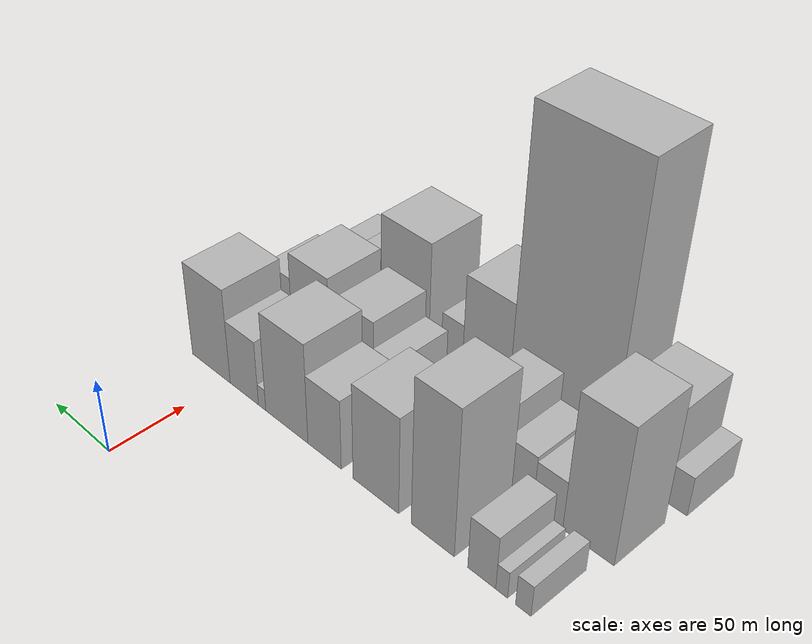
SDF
<sdf version="1.6">
 <world name="default">
  <model name="building_9">
   <static>1</static>
   <pose>100.0000 -221.3001 0 0.000000 0.000000 0.000000</pose>
   <link name="link">
    <pose>0 0 10.50 0 0 0</pose>
    <collision name="collision"><geometry><box><size>40.0000 9.7096 21.0000</size></box></geometry></collision>
    <visual name="visual">
     <cast_shadows>0</cast_shadows>
     <geometry><box><size>40.0000 9.7096 21.0000</size></box></geometry>
     <material>
      <script>
       <uri>model://HANNAS_wall/materials/scripts</uri>
       <uri>model://HANNAS_wall/materials/textures</uri>
       <name>vrc/HANNAS_wall</name>
      </script>
     </material>
    </visual>
   </link>
  </model>
  <model name="building_10">
   <static>1</static>
   <pose>100.0000 -207.6392 0 0.000000 0.000000 0.000000</pose>
   <link name="link">
    <pose>0 0 9.00 0 0 0</pose>
    <collision name="collision"><geometry><box><size>40.0000 7.6121 18.0000</size></box></geometry></collision>
    <visual name="visual">
     <cast_shadows>0</cast_shadows>
     <geometry><box><size>40.0000 7.6121 18.0000</size></box></geometry>
     <material>
      <script>
       <uri>model://HANNAS_wall/materials/scripts</uri>
       <uri>model://HANNAS_wall/materials/textures</uri>
       <name>vrc/HANNAS_wall</name>
      </script>
     </material>
    </visual>
   </link>
  </model>
  <model name="building_11">
   <static>1</static>
   <pose>100.0000 -194.6576 0 0.000000 0.000000 0.000000</pose>
   <link name="link">
    <pose>0 0 18.00 0 0 0</pose>
    <collision name="collision"><geometry><box><size>40.0000 18.3511 36.0000</size></box></geometry></collision>
    <visual name="visual">
     <cast_shadows>0</cast_shadows>
     <geometry><box><size>40.0000 18.3511 36.0000</size></box></geometry>
     <material>
      <script>
       <uri>model://HANNAS_wall/materials/scripts</uri>
       <uri>model://HANNAS_wall/materials/textures</uri>
       <name>vrc/HANNAS_wall</name>
      </script>
     </material>
    </visual>
   </link>
  </model>
  <model name="building_12">
   <static>1</static>
   <pose>100.0000 -161.5539 0 0.000000 0.000000 0.000000</pose>
   <link name="link">
    <pose>0 0 49.50 0 0 0</pose>
    <collision name="collision"><geometry><box><size>40.0000 29.8562 99.0000</size></box></geometry></collision>
    <visual name="visual">
     <cast_shadows>0</cast_shadows>
     <geometry><box><size>40.0000 29.8562 99.0000</size></box></geometry>
     <material>
      <script>
       <uri>model://HANNAS_wall/materials/scripts</uri>
       <uri>model://HANNAS_wall/materials/textures</uri>
       <name>vrc/HANNAS_wall</name>
      </script>
     </material>
    </visual>
   </link>
  </model>
  <model name="building_13">
   <static>1</static>
   <pose>100.0000 -120.6561 0 0.000000 0.000000 0.000000</pose>
   <link name="link">
    <pose>0 0 33.00 0 0 0</pose>
    <collision name="collision"><geometry><box><size>40.0000 33.9394 66.0000</size></box></geometry></collision>
    <visual name="visual">
     <cast_shadows>0</cast_shadows>
     <geometry><box><size>40.0000 33.9394 66.0000</size></box></geometry>
     <material>
      <script>
       <uri>model://HANNAS_wall/materials/scripts</uri>
       <uri>model://HANNAS_wall/materials/textures</uri>
       <name>vrc/HANNAS_wall</name>
      </script>
     </material>
    </visual>
   </link>
  </model>
  <model name="building_14">
   <static>1</static>
   <pose>100.0000 -81.5072 0 0.000000 0.000000 0.000000</pose>
   <link name="link">
    <pose>0 0 24.00 0 0 0</pose>
    <collision name="collision"><geometry><box><size>40.0000 26.3584 48.0000</size></box></geometry></collision>
    <visual name="visual">
     <cast_shadows>0</cast_shadows>
     <geometry><box><size>40.0000 26.3584 48.0000</size></box></geometry>
     <material>
      <script>
       <uri>model://HANNAS_wall/materials/scripts</uri>
       <uri>model://HANNAS_wall/materials/textures</uri>
       <name>vrc/HANNAS_wall</name>
      </script>
     </material>
    </visual>
   </link>
  </model>
  <model name="building_15">
   <static>1</static>
   <pose>100.0000 -50.8605 0 0.000000 0.000000 0.000000</pose>
   <link name="link">
    <pose>0 0 34.50 0 0 0</pose>
    <collision name="collision"><geometry><box><size>40.0000 34.9350 69.0000</size></box></geometry></collision>
    <visual name="visual">
     <cast_shadows>0</cast_shadows>
     <geometry><box><size>40.0000 34.9350 69.0000</size></box></geometry>
     <material>
      <script>
       <uri>model://HANNAS_wall/materials/scripts</uri>
       <uri>model://HANNAS_wall/materials/textures</uri>
       <name>vrc/HANNAS_wall</name>
      </script>
     </material>
    </visual>
   </link>
  </model>
  <model name="building_16">
   <static>1</static>
   <pose>100.0000 -30.2823 0 0.000000 0.000000 0.000000</pose>
   <link name="link">
    <pose>0 0 7.50 0 0 0</pose>
    <collision name="collision"><geometry><box><size>40.0000 6.2215 15.0000</size></box></geometry></collision>
    <visual name="visual">
     <cast_shadows>0</cast_shadows>
     <geometry><box><size>40.0000 6.2215 15.0000</size></box></geometry>
     <material>
      <script>
       <uri>model://HANNAS_wall/materials/scripts</uri>
       <uri>model://HANNAS_wall/materials/textures</uri>
       <name>vrc/HANNAS_wall</name>
      </script>
     </material>
    </visual>
   </link>
  </model>
  <model name="building_17">
   <static>1</static>
   <pose>100.0000 -14.8061 0 0.000000 0.000000 0.000000</pose>
   <link name="link">
    <pose>0 0 22.50 0 0 0</pose>
    <collision name="collision"><geometry><box><size>40.0000 24.7308 45.0000</size></box></geometry></collision>
    <visual name="visual">
     <cast_shadows>0</cast_shadows>
     <geometry><box><size>40.0000 24.7308 45.0000</size></box></geometry>
     <material>
      <script>
       <uri>model://HANNAS_wall/materials/scripts</uri>
       <uri>model://HANNAS_wall/materials/textures</uri>
       <name>vrc/HANNAS_wall</name>
      </script>
     </material>
    </visual>
   </link>
  </model>
  <model name="building_18">
   <static>1</static>
   <pose>100.0000 14.7597 0 0.000000 0.000000 0.000000</pose>
   <link name="link">
    <pose>0 0 33.00 0 0 0</pose>
    <collision name="collision"><geometry><box><size>40.0000 34.4009 66.0000</size></box></geometry></collision>
    <visual name="visual">
     <cast_shadows>0</cast_shadows>
     <geometry><box><size>40.0000 34.4009 66.0000</size></box></geometry>
     <material>
      <script>
       <uri>model://HANNAS_wall/materials/scripts</uri>
       <uri>model://HANNAS_wall/materials/textures</uri>
       <name>vrc/HANNAS_wall</name>
      </script>
     </material>
    </visual>
   </link>
  </model>
  <model name="building_47">
   <static>1</static>
   <pose>152.0000 -217.5060 0 0.000000 0.000000 0.000000</pose>
   <link name="link">
    <pose>0 0 46.50 0 0 0</pose>
    <collision name="collision"><geometry><box><size>40.0000 32.5342 93.0000</size></box></geometry></collision>
    <visual name="visual">
     <cast_shadows>0</cast_shadows>
     <geometry><box><size>40.0000 32.5342 93.0000</size></box></geometry>
     <material>
      <script>
       <uri>model://HANNAS_wall/materials/scripts</uri>
       <uri>model://HANNAS_wall/materials/textures</uri>
       <name>vrc/HANNAS_wall</name>
      </script>
     </material>
    </visual>
   </link>
  </model>
  <model name="building_48">
   <static>1</static>
   <pose>152.0000 -191.4395 0 0.000000 0.000000 0.000000</pose>
   <link name="link">
    <pose>0 0 16.50 0 0 0</pose>
    <collision name="collision"><geometry><box><size>40.0000 19.5988 33.0000</size></box></geometry></collision>
    <visual name="visual">
     <cast_shadows>0</cast_shadows>
     <geometry><box><size>40.0000 19.5988 33.0000</size></box></geometry>
     <material>
      <script>
       <uri>model://HANNAS_wall/materials/scripts</uri>
       <uri>model://HANNAS_wall/materials/textures</uri>
       <name>vrc/HANNAS_wall</name>
      </script>
     </material>
    </visual>
   </link>
  </model>
  <model name="building_49">
   <static>1</static>
   <pose>152.0000 -171.7727 0 0.000000 0.000000 0.000000</pose>
   <link name="link">
    <pose>0 0 18.00 0 0 0</pose>
    <collision name="collision"><geometry><box><size>40.0000 19.7348 36.0000</size></box></geometry></collision>
    <visual name="visual">
     <cast_shadows>0</cast_shadows>
     <geometry><box><size>40.0000 19.7348 36.0000</size></box></geometry>
     <material>
      <script>
       <uri>model://HANNAS_wall/materials/scripts</uri>
       <uri>model://HANNAS_wall/materials/textures</uri>
       <name>vrc/HANNAS_wall</name>
      </script>
     </material>
    </visual>
   </link>
  </model>
  <model name="building_50">
   <static>1</static>
   <pose>152.0000 -148.2957 0 0.000000 0.000000 0.000000</pose>
   <link name="link">
    <pose>0 0 27.00 0 0 0</pose>
    <collision name="collision"><geometry><box><size>40.0000 27.2191 54.0000</size></box></geometry></collision>
    <visual name="visual">
     <cast_shadows>0</cast_shadows>
     <geometry><box><size>40.0000 27.2191 54.0000</size></box></geometry>
     <material>
      <script>
       <uri>model://HANNAS_wall/materials/scripts</uri>
       <uri>model://HANNAS_wall/materials/textures</uri>
       <name>vrc/HANNAS_wall</name>
      </script>
     </material>
    </visual>
   </link>
  </model>
  <model name="building_51">
   <static>1</static>
   <pose>152.0000 -72.7577 0 0.000000 0.000000 0.000000</pose>
   <link name="link">
    <pose>0 0 16.50 0 0 0</pose>
    <collision name="collision"><geometry><box><size>40.0000 17.2856 33.0000</size></box></geometry></collision>
    <visual name="visual">
     <cast_shadows>0</cast_shadows>
     <geometry><box><size>40.0000 17.2856 33.0000</size></box></geometry>
     <material>
      <script>
       <uri>model://HANNAS_wall/materials/scripts</uri>
       <uri>model://HANNAS_wall/materials/textures</uri>
       <name>vrc/HANNAS_wall</name>
      </script>
     </material>
    </visual>
   </link>
  </model>
  <model name="building_52">
   <static>1</static>
   <pose>152.0000 -48.9809 0 0.000000 0.000000 0.000000</pose>
   <link name="link">
    <pose>0 0 25.50 0 0 0</pose>
    <collision name="collision"><geometry><box><size>40.0000 30.2680 51.0000</size></box></geometry></collision>
    <visual name="visual">
     <cast_shadows>0</cast_shadows>
     <geometry><box><size>40.0000 30.2680 51.0000</size></box></geometry>
     <material>
      <script>
       <uri>model://HANNAS_wall/materials/scripts</uri>
       <uri>model://HANNAS_wall/materials/textures</uri>
       <name>vrc/HANNAS_wall</name>
      </script>
     </material>
    </visual>
   </link>
  </model>
  <model name="building_53">
   <static>1</static>
   <pose>152.0000 -11.5261 0 0.000000 0.000000 0.000000</pose>
   <link name="link">
    <pose>0 0 30.00 0 0 0</pose>
    <collision name="collision"><geometry><box><size>40.0000 32.6414 60.0000</size></box></geometry></collision>
    <visual name="visual">
     <cast_shadows>0</cast_shadows>
     <geometry><box><size>40.0000 32.6414 60.0000</size></box></geometry>
     <material>
      <script>
       <uri>model://HANNAS_wall/materials/scripts</uri>
       <uri>model://HANNAS_wall/materials/textures</uri>
       <name>vrc/HANNAS_wall</name>
      </script>
     </material>
    </visual>
   </link>
  </model>
  <model name="building_54">
   <static>1</static>
   <pose>152.0000 15.3104 0 0.000000 0.000000 0.000000</pose>
   <link name="link">
    <pose>0 0 21.00 0 0 0</pose>
    <collision name="collision"><geometry><box><size>40.0000 21.0316 42.0000</size></box></geometry></collision>
    <visual name="visual">
     <cast_shadows>0</cast_shadows>
     <geometry><box><size>40.0000 21.0316 42.0000</size></box></geometry>
     <material>
      <script>
       <uri>model://HANNAS_wall/materials/scripts</uri>
       <uri>model://HANNAS_wall/materials/textures</uri>
       <name>vrc/HANNAS_wall</name>
      </script>
     </material>
    </visual>
   </link>
  </model>
  <model name="building_81">
   <static>1</static>
   <pose>204.0000 -232.2177 0 0.000000 0.000000 0.000000</pose>
   <link name="link">
    <pose>0 0 13.50 0 0 0</pose>
    <collision name="collision"><geometry><box><size>40.0000 12.9776 27.0000</size></box></geometry></collision>
    <visual name="visual">
     <cast_shadows>0</cast_shadows>
     <geometry><box><size>40.0000 12.9776 27.0000</size></box></geometry>
     <material>
      <script>
       <uri>model://HANNAS_wall/materials/scripts</uri>
       <uri>model://HANNAS_wall/materials/textures</uri>
       <name>vrc/HANNAS_wall</name>
      </script>
     </material>
    </visual>
   </link>
  </model>
  <model name="building_82">
   <static>1</static>
   <pose>204.0000 -208.8524 0 0.000000 0.000000 0.000000</pose>
   <link name="link">
    <pose>0 0 31.50 0 0 0</pose>
    <collision name="collision"><geometry><box><size>40.0000 33.7529 63.0000</size></box></geometry></collision>
    <visual name="visual">
     <cast_shadows>0</cast_shadows>
     <geometry><box><size>40.0000 33.7529 63.0000</size></box></geometry>
     <material>
      <script>
       <uri>model://HANNAS_wall/materials/scripts</uri>
       <uri>model://HANNAS_wall/materials/textures</uri>
       <name>vrc/HANNAS_wall</name>
      </script>
     </material>
    </visual>
   </link>
  </model>
  <model name="building_83">
   <static>1</static>
   <pose>204.0000 -153.5234 0 0.000000 0.000000 0.000000</pose>
   <link name="link">
    <pose>0 0 94.50 0 0 0</pose>
    <collision name="collision"><geometry><box><size>40.0000 70.9052 189.0000</size></box></geometry></collision>
    <visual name="visual">
     <cast_shadows>0</cast_shadows>
     <geometry><box><size>40.0000 70.9052 189.0000</size></box></geometry>
     <material>
      <script>
       <uri>model://HANNAS_wall/materials/scripts</uri>
       <uri>model://HANNAS_wall/materials/textures</uri>
       <name>vrc/HANNAS_wall</name>
      </script>
     </material>
    </visual>
   </link>
  </model>
  <model name="building_84">
   <static>1</static>
   <pose>204.0000 -100.3104 0 0.000000 0.000000 0.000000</pose>
   <link name="link">
    <pose>0 0 33.00 0 0 0</pose>
    <collision name="collision"><geometry><box><size>40.0000 35.5207 66.0000</size></box></geometry></collision>
    <visual name="visual">
     <cast_shadows>0</cast_shadows>
     <geometry><box><size>40.0000 35.5207 66.0000</size></box></geometry>
     <material>
      <script>
       <uri>model://HANNAS_wall/materials/scripts</uri>
       <uri>model://HANNAS_wall/materials/textures</uri>
       <name>vrc/HANNAS_wall</name>
      </script>
     </material>
    </visual>
   </link>
  </model>
  <model name="building_85">
   <static>1</static>
   <pose>204.0000 -74.1930 0 0.000000 0.000000 0.000000</pose>
   <link name="link">
    <pose>0 0 15.00 0 0 0</pose>
    <collision name="collision"><geometry><box><size>40.0000 16.7143 30.0000</size></box></geometry></collision>
    <visual name="visual">
     <cast_shadows>0</cast_shadows>
     <geometry><box><size>40.0000 16.7143 30.0000</size></box></geometry>
     <material>
      <script>
       <uri>model://HANNAS_wall/materials/scripts</uri>
       <uri>model://HANNAS_wall/materials/textures</uri>
       <name>vrc/HANNAS_wall</name>
      </script>
     </material>
    </visual>
   </link>
  </model>
  <model name="building_86">
   <static>1</static>
   <pose>204.0000 -35.8660 0 0.000000 0.000000 0.000000</pose>
   <link name="link">
    <pose>0 0 36.00 0 0 0</pose>
    <collision name="collision"><geometry><box><size>40.0000 39.9396 72.0000</size></box></geometry></collision>
    <visual name="visual">
     <cast_shadows>0</cast_shadows>
     <geometry><box><size>40.0000 39.9396 72.0000</size></box></geometry>
     <material>
      <script>
       <uri>model://HANNAS_wall/materials/scripts</uri>
       <uri>model://HANNAS_wall/materials/textures</uri>
       <name>vrc/HANNAS_wall</name>
      </script>
     </material>
    </visual>
   </link>
  </model>
  <model name="building_87">
   <static>1</static>
   <pose>204.0000 -5.7195 0 0.000000 0.000000 0.000000</pose>
   <link name="link">
    <pose>0 0 19.50 0 0 0</pose>
    <collision name="collision"><geometry><box><size>40.0000 20.3535 39.0000</size></box></geometry></collision>
    <visual name="visual">
     <cast_shadows>0</cast_shadows>
     <geometry><box><size>40.0000 20.3535 39.0000</size></box></geometry>
     <material>
      <script>
       <uri>model://HANNAS_wall/materials/scripts</uri>
       <uri>model://HANNAS_wall/materials/textures</uri>
       <name>vrc/HANNAS_wall</name>
      </script>
     </material>
    </visual>
   </link>
  </model>
  <model name="building_88">
   <static>1</static>
   <pose>204.0000 8.1179 0 0.000000 0.000000 0.000000</pose>
   <link name="link">
    <pose>0 0 9.00 0 0 0</pose>
    <collision name="collision"><geometry><box><size>40.0000 7.3213 18.0000</size></box></geometry></collision>
    <visual name="visual">
     <cast_shadows>0</cast_shadows>
     <geometry><box><size>40.0000 7.3213 18.0000</size></box></geometry>
     <material>
      <script>
       <uri>model://HANNAS_wall/materials/scripts</uri>
       <uri>model://HANNAS_wall/materials/textures</uri>
       <name>vrc/HANNAS_wall</name>
      </script>
     </material>
    </visual>
   </link>
  </model>
  <model name="building_89">
   <static>1</static>
   <pose>204.0000 20.3497 0 0.000000 0.000000 0.000000</pose>
   <link name="link">
    <pose>0 0 15.00 0 0 0</pose>
    <collision name="collision"><geometry><box><size>40.0000 17.1423 30.0000</size></box></geometry></collision>
    <visual name="visual">
     <cast_shadows>0</cast_shadows>
     <geometry><box><size>40.0000 17.1423 30.0000</size></box></geometry>
     <material>
      <script>
       <uri>model://HANNAS_wall/materials/scripts</uri>
       <uri>model://HANNAS_wall/materials/textures</uri>
       <name>vrc/HANNAS_wall</name>
      </script>
     </material>
    </visual>
   </link>
  </model>
 </world>
</sdf>
